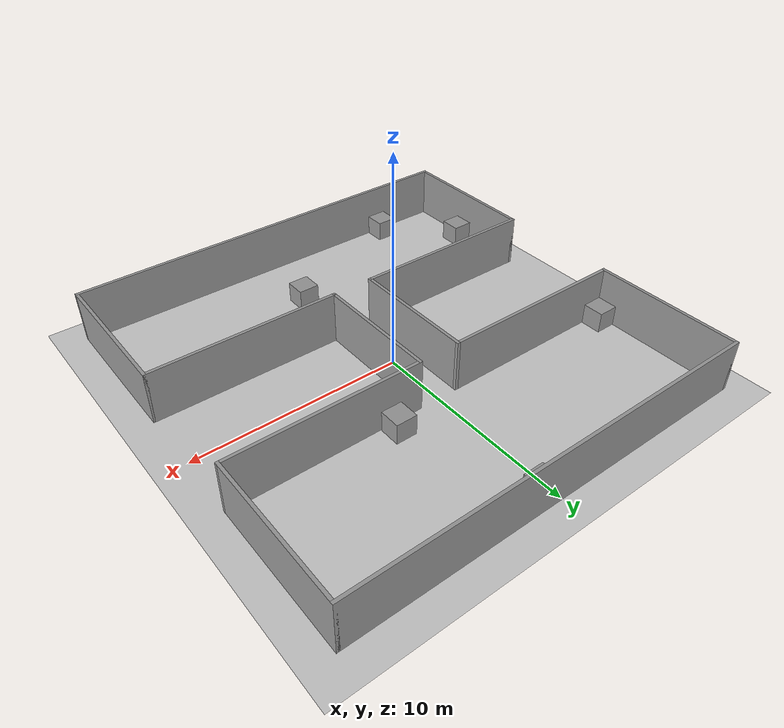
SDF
<sdf version="1.6">
 <world name="default">
  <light name="sun" type="directional">
   <pose>0 0 10 0 -0 0</pose>
   <diffuse>0.8 0.8 0.8 1</diffuse>
   <specular>0.2 0.2 0.2 1</specular>
   <attenuation>
    <range>1000</range>
    <constant>0.9</constant>
    <linear>0.01</linear>
    <quadratic>0.001</quadratic>
   </attenuation>
   <direction>-0.5 0.1 -0.9</direction>
  </light>
  <model name="ground_plane">
   <static>1</static>
   <link name="link">
    <collision name="collision">
     <geometry><plane><normal>0 0 1</normal><size>100 100</size></plane></geometry>
     <surface>
      <contact><collide_bitmask>65535</collide_bitmask></contact>
      <friction><ode><mu>100</mu><mu2>50</mu2></ode></friction>
     </surface>
    </collision>
    <visual name="visual">
     <cast_shadows>0</cast_shadows>
     <geometry><plane><normal>0 0 1</normal><size>100 100</size></plane></geometry>
     <material>
      <script><uri>file://media/materials/scripts/gazebo.material</uri><name>Gazebo/Grey</name></script>
     </material>
    </visual>
   </link>
  </model>
  <gravity>0 0 -9.8</gravity>
  <magnetic_field>6e-06 2.3e-05 -4.2e-05</magnetic_field>
  <atmosphere type="adiabatic"/>
  <physics name="default_physics" default="0" type="ode">
   <max_step_size>0.001</max_step_size>
   <real_time_factor>1</real_time_factor>
   <real_time_update_rate>1000</real_time_update_rate>
  </physics>
  <scene><ambient>0.4 0.4 0.4 1</ambient><background>0.7 0.7 0.7 1</background><shadows>1</shadows></scene>
  <audio><device>default</device></audio>
  <spherical_coordinates>
   <surface_model>EARTH_WGS84</surface_model>
   <latitude_deg>0</latitude_deg>
   <longitude_deg>0</longitude_deg>
   <elevation>0</elevation>
   <heading_deg>0</heading_deg>
  </spherical_coordinates>
  <model name="corridor_sym">
   <link name="Wall_0">
    <collision name="Wall_0_Collision">
     <geometry><box><size>20.15 0.15 2.5</size></box></geometry>
     <pose>0 0 1.25 0 -0 0</pose>
    </collision>
    <visual name="Wall_0_Visual">
     <pose>0 0 1.25 0 -0 0</pose>
     <geometry><box><size>20.15 0.15 2.5</size></box></geometry>
     <material>
      <script><uri>file://media/materials/scripts/gazebo.material</uri><name>Gazebo/Grey</name></script>
      <ambient>1 1 1 1</ambient>
     </material>
     <meta><layer>0</layer></meta>
    </visual>
    <pose>0 -10 0 0 -0 0</pose>
   </link>
   <link name="Wall_10">
    <collision name="Wall_10_Collision">
     <geometry><box><size>6.15 0.15 2.5</size></box></geometry>
     <pose>0 0 1.25 0 -0 0</pose>
    </collision>
    <visual name="Wall_10_Visual">
     <pose>0 0 1.25 0 -0 0</pose>
     <geometry><box><size>6.15 0.15 2.5</size></box></geometry>
     <material>
      <script><uri>file://media/materials/scripts/gazebo.material</uri><name>Gazebo/Grey</name></script>
      <ambient>1 1 1 1</ambient>
     </material>
     <meta><layer>0</layer></meta>
    </visual>
    <pose>1 0 0 0 -0 -1.5708</pose>
   </link>
   <link name="Wall_11">
    <collision name="Wall_11_Collision">
     <geometry><box><size>9.15 0.15 2.5</size></box></geometry>
     <pose>0 0 1.25 0 -0 0</pose>
    </collision>
    <visual name="Wall_11_Visual">
     <pose>0 0 1.25 0 -0 0</pose>
     <geometry><box><size>9.15 0.15 2.5</size></box></geometry>
     <material>
      <script><uri>file://media/materials/scripts/gazebo.material</uri><name>Gazebo/Grey</name></script>
      <ambient>1 1 1 1</ambient>
     </material>
     <meta><layer>0</layer></meta>
    </visual>
    <pose>5.5 -3 0 0 -0 0</pose>
   </link>
   <link name="Wall_12">
    <collision name="Wall_12_Collision">
     <geometry><box><size>7.15 0.15 2.5</size></box></geometry>
     <pose>0 0 1.25 0 -0 0</pose>
    </collision>
    <visual name="Wall_12_Visual">
     <pose>0 0 1.25 0 -0 0</pose>
     <geometry><box><size>7.15 0.15 2.5</size></box></geometry>
     <material>
      <script><uri>file://media/materials/scripts/gazebo.material</uri><name>Gazebo/Grey</name></script>
      <ambient>1 1 1 1</ambient>
     </material>
     <meta><layer>0</layer></meta>
    </visual>
    <pose>10 -6.5 0 0 -0 -1.5708</pose>
   </link>
   <link name="Wall_2">
    <collision name="Wall_2_Collision">
     <geometry><box><size>7.15 0.15 2.5</size></box></geometry>
     <pose>0 0 1.25 0 -0 0</pose>
    </collision>
    <visual name="Wall_2_Visual">
     <pose>0 0 1.25 0 -0 0</pose>
     <geometry><box><size>7.15 0.15 2.5</size></box></geometry>
     <material>
      <script><uri>file://media/materials/scripts/gazebo.material</uri><name>Gazebo/Grey</name></script>
      <ambient>1 1 1 1</ambient>
     </material>
     <meta><layer>0</layer></meta>
    </visual>
    <pose>-10 -6.5 0 0 -0 1.5708</pose>
   </link>
   <link name="Wall_3">
    <collision name="Wall_3_Collision">
     <geometry><box><size>9.15 0.15 2.5</size></box></geometry>
     <pose>0 0 1.25 0 -0 0</pose>
    </collision>
    <visual name="Wall_3_Visual">
     <pose>0 0 1.25 0 -0 0</pose>
     <geometry><box><size>9.15 0.15 2.5</size></box></geometry>
     <material>
      <script><uri>file://media/materials/scripts/gazebo.material</uri><name>Gazebo/Grey</name></script>
      <ambient>1 1 1 1</ambient>
     </material>
     <meta><layer>0</layer></meta>
    </visual>
    <pose>-5.5 -3 0 0 -0 0</pose>
   </link>
   <link name="Wall_4">
    <collision name="Wall_4_Collision">
     <geometry><box><size>6.15 0.15 2.5</size></box></geometry>
     <pose>0 0 1.25 0 -0 0</pose>
    </collision>
    <visual name="Wall_4_Visual">
     <pose>0 0 1.25 0 -0 0</pose>
     <geometry><box><size>6.15 0.15 2.5</size></box></geometry>
     <material>
      <script><uri>file://media/materials/scripts/gazebo.material</uri><name>Gazebo/Grey</name></script>
      <ambient>1 1 1 1</ambient>
     </material>
     <meta><layer>0</layer></meta>
    </visual>
    <pose>-1 0 0 0 -0 1.5708</pose>
   </link>
   <link name="Wall_5">
    <collision name="Wall_5_Collision">
     <geometry><box><size>9.15 0.15 2.5</size></box></geometry>
     <pose>0 0 1.25 0 -0 0</pose>
    </collision>
    <visual name="Wall_5_Visual">
     <pose>0 0 1.25 0 -0 0</pose>
     <geometry><box><size>9.15 0.15 2.5</size></box></geometry>
     <material>
      <script><uri>file://media/materials/scripts/gazebo.material</uri><name>Gazebo/Grey</name></script>
      <ambient>1 1 1 1</ambient>
     </material>
     <meta><layer>0</layer></meta>
    </visual>
    <pose>-5.5 3 0 0 -0 3.14159</pose>
   </link>
   <link name="Wall_6">
    <collision name="Wall_6_Collision">
     <geometry><box><size>7.15 0.15 2.5</size></box></geometry>
     <pose>0 0 1.25 0 -0 0</pose>
    </collision>
    <visual name="Wall_6_Visual">
     <pose>0 0 1.25 0 -0 0</pose>
     <geometry><box><size>7.15 0.15 2.5</size></box></geometry>
     <material>
      <script><uri>file://media/materials/scripts/gazebo.material</uri><name>Gazebo/Grey</name></script>
      <ambient>1 1 1 1</ambient>
     </material>
     <meta><layer>0</layer></meta>
    </visual>
    <pose>-10 6.5 0 0 -0 1.5708</pose>
   </link>
   <link name="Wall_7">
    <collision name="Wall_7_Collision">
     <geometry><box><size>20.15 0.15 2.5</size></box></geometry>
     <pose>0 0 1.25 0 -0 0</pose>
    </collision>
    <visual name="Wall_7_Visual">
     <pose>0 0 1.25 0 -0 0</pose>
     <geometry><box><size>20.15 0.15 2.5</size></box></geometry>
     <material>
      <script><uri>file://media/materials/scripts/gazebo.material</uri><name>Gazebo/Grey</name></script>
      <ambient>1 1 1 1</ambient>
     </material>
     <meta><layer>0</layer></meta>
    </visual>
    <pose>0 10 0 0 -0 0</pose>
   </link>
   <link name="Wall_8">
    <collision name="Wall_8_Collision">
     <geometry><box><size>7.15 0.15 2.5</size></box></geometry>
     <pose>0 0 1.25 0 -0 0</pose>
    </collision>
    <visual name="Wall_8_Visual">
     <pose>0 0 1.25 0 -0 0</pose>
     <geometry><box><size>7.15 0.15 2.5</size></box></geometry>
     <material>
      <script><uri>file://media/materials/scripts/gazebo.material</uri><name>Gazebo/Grey</name></script>
      <ambient>1 1 1 1</ambient>
     </material>
     <meta><layer>0</layer></meta>
    </visual>
    <pose>10 6.5 0 0 -0 -1.5708</pose>
   </link>
   <link name="Wall_9">
    <collision name="Wall_9_Collision">
     <geometry><box><size>9.15 0.15 2.5</size></box></geometry>
     <pose>0 0 1.25 0 -0 0</pose>
    </collision>
    <visual name="Wall_9_Visual">
     <pose>0 0 1.25 0 -0 0</pose>
     <geometry><box><size>9.15 0.15 2.5</size></box></geometry>
     <material>
      <script><uri>file://media/materials/scripts/gazebo.material</uri><name>Gazebo/Grey</name></script>
      <ambient>1 1 1 1</ambient>
     </material>
     <meta><layer>0</layer></meta>
    </visual>
    <pose>5.5 3 0 0 -0 3.14159</pose>
   </link>
   <static>1</static>
  </model>
  <plugin name="gazebo_occupancy_map" filename="libgazebo_2Dmap_plugin.so">
   <map_resolution>0.1</map_resolution>
   <map_height>0.3</map_height>
   <map_size_x>25</map_size_x>
   <map_size_y>25</map_size_y>
   <init_robot_x>0</init_robot_x>
   <init_robot_y>0</init_robot_y>
  </plugin>
  <model name="unit_box">
   <pose>-9.42498 3.57501 0.5 0 -0 3e-06</pose>
   <link name="link">
    <inertial>
     <mass>1</mass>
     <inertia>
      <ixx>0.166667</ixx>
      <ixy>0</ixy>
      <ixz>0</ixz>
      <iyy>0.166667</iyy>
      <iyz>0</iyz>
      <izz>0.166667</izz>
     </inertia>
    </inertial>
    <collision name="collision"><geometry><box><size>1 1 1</size></box></geometry></collision>
    <visual name="visual">
     <geometry><box><size>1 1 1</size></box></geometry>
     <material>
      <script><name>Gazebo/Grey</name><uri>file://media/materials/scripts/gazebo.material</uri></script>
     </material>
    </visual>
   </link>
  </model>
  <model name="unit_box_0">
   <pose>0.489481 9.425 0.5 0 -0 0</pose>
   <link name="link">
    <inertial>
     <mass>1</mass>
     <inertia>
      <ixx>0.166667</ixx>
      <ixy>0</ixy>
      <ixz>0</ixz>
      <iyy>0.166667</iyy>
      <iyz>0</iyz>
      <izz>0.166667</izz>
     </inertia>
    </inertial>
    <collision name="collision"><geometry><box><size>1 1 1</size></box></geometry></collision>
    <visual name="visual">
     <geometry><box><size>1 1 1</size></box></geometry>
     <material>
      <script><name>Gazebo/Grey</name><uri>file://media/materials/scripts/gazebo.material</uri></script>
     </material>
    </visual>
   </link>
  </model>
  <model name="unit_box_1">
   <pose>2.53716 3.61243 0.5 0 -0 0</pose>
   <link name="link">
    <inertial>
     <mass>1</mass>
     <inertia>
      <ixx>0.166667</ixx>
      <ixy>0</ixy>
      <ixz>0</ixz>
      <iyy>0.166667</iyy>
      <iyz>0</iyz>
      <izz>0.166667</izz>
     </inertia>
    </inertial>
    <collision name="collision"><geometry><box><size>1 1 1</size></box></geometry></collision>
    <visual name="visual">
     <geometry><box><size>1 1 1</size></box></geometry>
     <material>
      <script><name>Gazebo/Grey</name><uri>file://media/materials/scripts/gazebo.material</uri></script>
     </material>
    </visual>
   </link>
  </model>
  <model name="unit_box_2">
   <pose>6.51785 -3.575 0.5 0 0 -3e-06</pose>
   <link name="link">
    <inertial>
     <mass>1</mass>
     <inertia>
      <ixx>0.166667</ixx>
      <ixy>0</ixy>
      <ixz>0</ixz>
      <iyy>0.166667</iyy>
      <iyz>0</iyz>
      <izz>0.166667</izz>
     </inertia>
    </inertial>
    <collision name="collision"><geometry><box><size>1 1 1</size></box></geometry></collision>
    <visual name="visual">
     <geometry><box><size>1 1 1</size></box></geometry>
     <material>
      <script><name>Gazebo/Grey</name><uri>file://media/materials/scripts/gazebo.material</uri></script>
     </material>
    </visual>
   </link>
  </model>
  <model name="unit_box_3">
   <pose>-6.49074 -9.425 0.5 0 -0 4e-06</pose>
   <link name="link">
    <inertial>
     <mass>1</mass>
     <inertia>
      <ixx>0.166667</ixx>
      <ixy>0</ixy>
      <ixz>0</ixz>
      <iyy>0.166667</iyy>
      <iyz>0</iyz>
      <izz>0.166667</izz>
     </inertia>
    </inertial>
    <collision name="collision"><geometry><box><size>1 1 1</size></box></geometry></collision>
    <visual name="visual">
     <geometry><box><size>1 1 1</size></box></geometry>
     <material>
      <script><name>Gazebo/Grey</name><uri>file://media/materials/scripts/gazebo.material</uri></script>
     </material>
    </visual>
   </link>
  </model>
  <model name="unit_box_4">
   <pose>-9.41554 -6.50904 0.5 0 -0 0</pose>
   <link name="link">
    <inertial>
     <mass>1</mass>
     <inertia>
      <ixx>0.166667</ixx>
      <ixy>0</ixy>
      <ixz>0</ixz>
      <iyy>0.166667</iyy>
      <iyz>0</iyz>
      <izz>0.166667</izz>
     </inertia>
    </inertial>
    <collision name="collision"><geometry><box><size>1 1 1</size></box></geometry></collision>
    <visual name="visual">
     <geometry><box><size>1 1 1</size></box></geometry>
     <material>
      <script><name>Gazebo/Grey</name><uri>file://media/materials/scripts/gazebo.material</uri></script>
     </material>
    </visual>
   </link>
  </model>
  <model name="unit_box_5">
   <pose>0.497627 -6.46937 0.5 0 -0 0</pose>
   <link name="link">
    <inertial>
     <mass>1</mass>
     <inertia>
      <ixx>0.166667</ixx>
      <ixy>0</ixy>
      <ixz>0</ixz>
      <iyy>0.166667</iyy>
      <iyz>0</iyz>
      <izz>0.166667</izz>
     </inertia>
    </inertial>
    <collision name="collision"><geometry><box><size>1 1 1</size></box></geometry></collision>
    <visual name="visual">
     <geometry><box><size>1 1 1</size></box></geometry>
     <material>
      <script><name>Gazebo/Grey</name><uri>file://media/materials/scripts/gazebo.material</uri></script>
     </material>
    </visual>
   </link>
  </model>
 </world>
</sdf>
